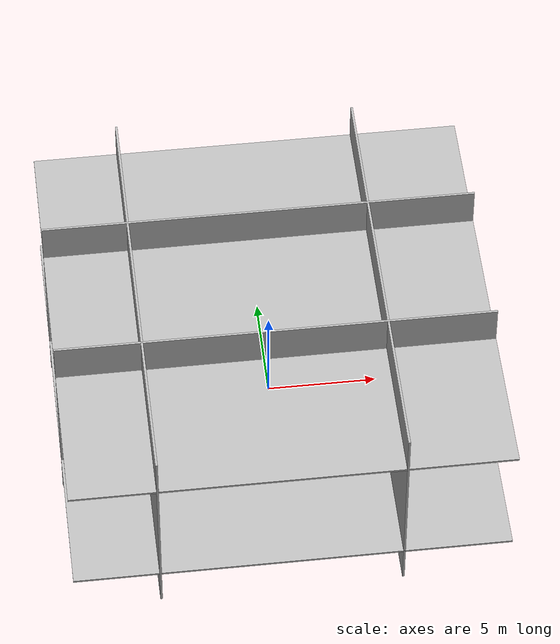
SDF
<sdf version="1.6"><world name="default"><gravity>0 0 0</gravity>
<physics type="ode"><max_step_size>0.002</max_step_size><real_time_update_rate>500</real_time_update_rate></physics>
<scene><ambient>0.5 0.5 0.5 1</ambient><shadows>false</shadows></scene>
<model name="front"><static>true</static><pose>5.05 0 3 0 0 0</pose><link name="body"><collision name="collision"><geometry><box><size>0.1 20 10</size></box></geometry></collision><visual name="visual"><geometry><box><size>0.1 20 10</size></box></geometry></visual></link></model><model name="back"><static>true</static><pose>-6.05 0 3 0 0 0</pose><link name="body"><collision name="collision"><geometry><box><size>0.1 20 10</size></box></geometry></collision><visual name="visual"><geometry><box><size>0.1 20 10</size></box></geometry></visual></link></model><model name="left"><static>true</static><pose>0 4.05 3 0 0 0</pose><link name="body"><collision name="collision"><geometry><box><size>20 0.1 10</size></box></geometry></collision><visual name="visual"><geometry><box><size>20 0.1 10</size></box></geometry></visual></link></model><model name="right"><static>true</static><pose>0 -3.05 3 0 0 0</pose><link name="body"><collision name="collision"><geometry><box><size>20 0.1 10</size></box></geometry></collision><visual name="visual"><geometry><box><size>20 0.1 10</size></box></geometry></visual></link></model><model name="floor"><static>true</static><pose>0 0 -0.05 0 0 0</pose><link name="body"><collision name="collision"><geometry><box><size>20 20 0.1</size></box></geometry></collision><visual name="visual"><geometry><box><size>20 20 0.1</size></box></geometry></visual></link></model><model name="ceiling"><static>true</static><pose>0 0 6.05 0 0 0</pose><link name="body"><collision name="collision"><geometry><box><size>20 20 0.1</size></box></geometry></collision><visual name="visual"><geometry><box><size>20 20 0.1</size></box></geometry></visual></link></model>
<model name="scanner"><pose>0 0 1 0 0 0</pose><link name="base_link"><gravity>false</gravity>
<inertial><mass>1</mass><inertia><ixx>1</ixx><iyy>1</iyy><izz>1</izz></inertia></inertial>
<sensor name="simple_lidar" type="xgc2_gpu_lidar"><pose>0.3 -0.2 0.4 0.1 -0.12 0.15</pose><always_on>false</always_on><update_rate>4</update_rate>
<ray><scan><horizontal><samples>360</samples><resolution>1</resolution><min_angle>-3.14159265359</min_angle><max_angle>3.14159265359</max_angle></horizontal><vertical><samples>32</samples><resolution>1</resolution><min_angle>-1.5707963267948966</min_angle><max_angle>1.5707963267948966</max_angle></vertical></scan><range><min>0.15</min><max>20</max><resolution>0.01</resolution></range></ray>
<topic>/test_robot/simple_lidar/points</topic></sensor></link></model></world></sdf>
